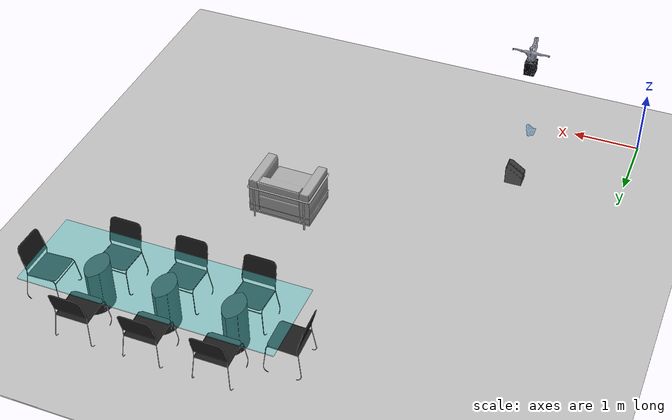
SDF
<sdf version="1.6">
 <world name="default">
  <model name="ground_plane">
   <static>1</static>
   <link name="link">
    <collision name="collision">
     <geometry><plane><normal>0 0 1</normal><size>100 100</size></plane></geometry>
     <surface><friction><ode><mu>1</mu><mu2>1</mu2></ode></friction></surface>
    </collision>
    <visual name="visual">
     <cast_shadows>0</cast_shadows>
     <geometry><plane><normal>0 0 1</normal><size>100 100</size></plane></geometry>
     <material>
      <script><uri>file://media/materials/scripts/gazebo.material</uri><name>Gazebo/Grey</name></script>
     </material>
    </visual>
    <velocity_decay><linear>0</linear><angular>0</angular></velocity_decay>
   </link>
  </model>
  <model name="chair_set_1_0">
   <link name="link_16">
    <pose>0.07217 0.114259 -0.032065 0 -0 1.57</pose>
    <visual name="visual">
     <geometry><mesh><uri>model://chair_set_1/meshes/chair_frame.dae</uri><scale>1 1 1</scale></mesh></geometry>
     <material>
      <lighting>1</lighting>
      <ambient>0.3 0.3 0.3 1</ambient>
      <diffuse>0.7 0.7 0.7 1</diffuse>
      <specular>0.01 0.01 0.01 1</specular>
      <emissive>0 0 0 1</emissive>
      <shader type="vertex"><normal_map>__default__</normal_map></shader>
     </material>
    </visual>
    <collision name="collision">
     <geometry><mesh><uri>model://chair_set_1/meshes/chair_frame.dae</uri><scale>1 1 1</scale></mesh></geometry>
    </collision>
   </link>
   <link name="link_17">
    <pose>0.069192 0.1237 -0.032065 0 -0 1.57</pose>
    <visual name="visual">
     <geometry><mesh><uri>model://chair_set_1/meshes/chair_cushions.dae</uri><scale>1 1 1</scale></mesh></geometry>
     <material>
      <script>
       <uri>model://chair_set_1/materials/scripts</uri>
       <uri>model://chair_set_1/materials/textures</uri>
       <name>chair_set_1</name>
      </script>
     </material>
    </visual>
    <collision name="collision">
     <geometry><mesh><uri>model://chair_set_1/meshes/chair_cushions.dae</uri><scale>1 1 1</scale></mesh></geometry>
    </collision>
   </link>
   <link name="link_18">
    <pose>0.606963 -0.367766 -0.032065 0 -0 0</pose>
    <visual name="visual">
     <geometry>
      <mesh><uri>model://chair_set_1/meshes/sofa_cushions_back.dae</uri><scale>1 1 1</scale></mesh>
     </geometry>
     <material>
      <script>
       <uri>model://chair_set_1/materials/scripts</uri>
       <uri>model://chair_set_1/materials/textures</uri>
       <name>chair_set_1</name>
      </script>
     </material>
    </visual>
    <collision name="collision">
     <geometry>
      <mesh><uri>model://chair_set_1/meshes/sofa_cushions_back.dae</uri><scale>1 1 1</scale></mesh>
     </geometry>
    </collision>
   </link>
   <static>1</static>
   <pose>4.46134 3.28393 0 0 0 -0.011</pose>
  </model>
  <model name="chair_3">
   <link name="link_4">
    <pose>-0.282457 -0.259387 0 0 -0 0</pose>
    <visual name="visual">
     <geometry><mesh><uri>model://chair_3/meshes/model.dae</uri><scale>1 1 1</scale></mesh></geometry>
     <material>
      <lighting>1</lighting>
      <ambient>0 0 0 1</ambient>
      <diffuse>0.1 0.1 0.1 1</diffuse>
      <specular>0.01 0.01 0.01 1</specular>
      <emissive>0 0 0 1</emissive>
     </material>
    </visual>
    <collision name="collision">
     <geometry><mesh><uri>model://chair_3/meshes/model.dae</uri><scale>1 1 1</scale></mesh></geometry>
    </collision>
   </link>
   <static>1</static>
   <pose>4 6.5 0 0 -0 0</pose>
  </model>
  <model name="chair_3_clone">
   <link name="link_4">
    <pose>-0.282457 -0.259387 0 0 -0 0</pose>
    <visual name="visual">
     <geometry><mesh><uri>model://chair_3/meshes/model.dae</uri><scale>1 1 1</scale></mesh></geometry>
     <material>
      <lighting>1</lighting>
      <ambient>0 0 0 1</ambient>
      <diffuse>0.1 0.1 0.1 1</diffuse>
      <specular>0.01 0.01 0.01 1</specular>
      <emissive>0 0 0 1</emissive>
     </material>
    </visual>
    <collision name="collision">
     <geometry><mesh><uri>model://chair_3/meshes/model.dae</uri><scale>1 1 1</scale></mesh></geometry>
    </collision>
   </link>
   <static>1</static>
   <pose>5 6.5 0 0 -0 0</pose>
  </model>
  <model name="chair_3_clone_0">
   <link name="link_4">
    <pose>-0.282457 -0.259387 0 0 -0 0</pose>
    <visual name="visual">
     <geometry><mesh><uri>model://chair_3/meshes/model.dae</uri><scale>1 1 1</scale></mesh></geometry>
     <material>
      <lighting>1</lighting>
      <ambient>0 0 0 1</ambient>
      <diffuse>0.1 0.1 0.1 1</diffuse>
      <specular>0.01 0.01 0.01 1</specular>
      <emissive>0 0 0 1</emissive>
     </material>
    </visual>
    <collision name="collision">
     <geometry><mesh><uri>model://chair_3/meshes/model.dae</uri><scale>1 1 1</scale></mesh></geometry>
    </collision>
   </link>
   <static>1</static>
   <pose>6 6.5 0 0 -0 0</pose>
  </model>
  <model name="chair_3_clone_1">
   <link name="link_4">
    <pose>-0.282457 -0.259387 0 0 -0 0</pose>
    <visual name="visual">
     <geometry><mesh><uri>model://chair_3/meshes/model.dae</uri><scale>1 1 1</scale></mesh></geometry>
     <material>
      <lighting>1</lighting>
      <ambient>0 0 0 1</ambient>
      <diffuse>0.1 0.1 0.1 1</diffuse>
      <specular>0.01 0.01 0.01 1</specular>
      <emissive>0 0 0 1</emissive>
     </material>
    </visual>
    <collision name="collision">
     <geometry><mesh><uri>model://chair_3/meshes/model.dae</uri><scale>1 1 1</scale></mesh></geometry>
    </collision>
   </link>
   <static>1</static>
   <pose>6 5.5 0 0 -0 3.13584</pose>
  </model>
  <model name="chair_3_clone_1_clone">
   <link name="link_4">
    <pose>-0.282457 -0.259387 0 0 -0 0</pose>
    <visual name="visual">
     <geometry><mesh><uri>model://chair_3/meshes/model.dae</uri><scale>1 1 1</scale></mesh></geometry>
     <material>
      <lighting>1</lighting>
      <ambient>0 0 0 1</ambient>
      <diffuse>0.1 0.1 0.1 1</diffuse>
      <specular>0.01 0.01 0.01 1</specular>
      <emissive>0 0 0 1</emissive>
     </material>
    </visual>
    <collision name="collision">
     <geometry><mesh><uri>model://chair_3/meshes/model.dae</uri><scale>1 1 1</scale></mesh></geometry>
    </collision>
   </link>
   <static>1</static>
   <pose>5 5.5 0 0 -0 3.13584</pose>
  </model>
  <model name="chair_3_clone_1_clone_0">
   <link name="link_4">
    <pose>-0.282457 -0.259387 0 0 -0 0</pose>
    <visual name="visual">
     <geometry><mesh><uri>model://chair_3/meshes/model.dae</uri><scale>1 1 1</scale></mesh></geometry>
     <material>
      <lighting>1</lighting>
      <ambient>0 0 0 1</ambient>
      <diffuse>0.1 0.1 0.1 1</diffuse>
      <specular>0.01 0.01 0.01 1</specular>
      <emissive>0 0 0 1</emissive>
     </material>
    </visual>
    <collision name="collision">
     <geometry><mesh><uri>model://chair_3/meshes/model.dae</uri><scale>1 1 1</scale></mesh></geometry>
    </collision>
   </link>
   <static>1</static>
   <pose>4 5.5 0 0 -0 3.13584</pose>
  </model>
  <model name="chair_3_clone_1_clone_0_clone">
   <link name="link_4">
    <pose>-0.282457 -0.259387 0 0 -0 0</pose>
    <visual name="visual">
     <geometry><mesh><uri>model://chair_3/meshes/model.dae</uri><scale>1 1 1</scale></mesh></geometry>
     <material>
      <lighting>1</lighting>
      <ambient>0 0 0 1</ambient>
      <diffuse>0.1 0.1 0.1 1</diffuse>
      <specular>0.01 0.01 0.01 1</specular>
      <emissive>0 0 0 1</emissive>
     </material>
    </visual>
    <collision name="collision">
     <geometry><mesh><uri>model://chair_3/meshes/model.dae</uri><scale>1 1 1</scale></mesh></geometry>
    </collision>
   </link>
   <static>1</static>
   <pose>3.25 6 0 0 -0 1.59445</pose>
  </model>
  <model name="chair_3_clone_1_clone_0_clone_0">
   <link name="link_4">
    <pose>-0.282457 -0.259387 0 0 -0 0</pose>
    <visual name="visual">
     <geometry><mesh><uri>model://chair_3/meshes/model.dae</uri><scale>1 1 1</scale></mesh></geometry>
     <material>
      <lighting>1</lighting>
      <ambient>0 0 0 1</ambient>
      <diffuse>0.1 0.1 0.1 1</diffuse>
      <specular>0.01 0.01 0.01 1</specular>
      <emissive>0 0 0 1</emissive>
     </material>
    </visual>
    <collision name="collision">
     <geometry><mesh><uri>model://chair_3/meshes/model.dae</uri><scale>1 1 1</scale></mesh></geometry>
    </collision>
   </link>
   <static>1</static>
   <pose>6.75 6 0 0 0 -1.58533</pose>
  </model>
  <model name="table_conference_3">
   <link name="link_6">
    <visual name="visual">
     <geometry><mesh><uri>model://table_conference_3/meshes/leg.dae</uri><scale>1 1 1</scale></mesh></geometry>
     <material>
      <script>
       <uri>model://table_conference_3/materials/scripts</uri>
       <uri>model://table_conference_3/materials/textures</uri>
       <name>table_conf_3</name>
      </script>
     </material>
    </visual>
    <collision name="collision">
     <geometry><mesh><uri>model://table_conference_3/meshes/leg.dae</uri><scale>1 1 1</scale></mesh></geometry>
    </collision>
   </link>
   <link name="link_7">
    <visual name="visual">
     <geometry><mesh><uri>model://table_conference_3/meshes/top.dae</uri><scale>1 1 1</scale></mesh></geometry>
     <material>
      <lighting>1</lighting>
      <ambient>0.278 0.776 0.776 1</ambient>
      <diffuse>0.278 0.776 0.776 1</diffuse>
      <specular>0.01 0.01 0.01 1</specular>
      <emissive>0 0 0 1</emissive>
      <shader type="vertex"><normal_map>__default__</normal_map></shader>
     </material>
     <transparency>0.6</transparency>
    </visual>
    <collision name="collision">
     <geometry><mesh><uri>model://table_conference_3/meshes/top.dae</uri><scale>1 1 1</scale></mesh></geometry>
    </collision>
   </link>
   <link name="link_8">
    <pose>0 1 0 0 -0 0</pose>
    <visual name="visual">
     <geometry><mesh><uri>model://table_conference_3/meshes/leg.dae</uri><scale>1 1 1</scale></mesh></geometry>
     <material>
      <script>
       <uri>model://table_conference_3/materials/scripts</uri>
       <uri>model://table_conference_3/materials/textures</uri>
       <name>table_conf_3</name>
      </script>
     </material>
    </visual>
    <collision name="collision">
     <geometry><mesh><uri>model://table_conference_3/meshes/leg.dae</uri><scale>1 1 1</scale></mesh></geometry>
    </collision>
   </link>
   <link name="link_9">
    <pose>0 -1 0 0 -0 0</pose>
    <visual name="visual">
     <geometry><mesh><uri>model://table_conference_3/meshes/leg.dae</uri><scale>1 1 1</scale></mesh></geometry>
     <material>
      <script>
       <uri>model://table_conference_3/materials/scripts</uri>
       <uri>model://table_conference_3/materials/textures</uri>
       <name>table_conf_3</name>
      </script>
     </material>
    </visual>
    <collision name="collision">
     <geometry><mesh><uri>model://table_conference_3/meshes/leg.dae</uri><scale>1 1 1</scale></mesh></geometry>
    </collision>
   </link>
   <static>1</static>
   <pose>5 6 -0.002256 0 0 -1.57202</pose>
  </model>
  <model name="figurine_2">
   <link name="link_2">
    <visual name="visual">
     <geometry><mesh><uri>model://figurine_2/meshes/model.dae</uri><scale>1 1 1</scale></mesh></geometry>
     <material>
      <script>
       <uri>model://figurine_2/materials/scripts</uri>
       <uri>model://figurine_2/materials/textures</uri>
       <name>figure</name>
      </script>
     </material>
    </visual>
    <collision name="collision">
     <geometry><mesh><uri>model://figurine_2/meshes/model.dae</uri><scale>1 1 1</scale></mesh></geometry>
    </collision>
   </link>
   <static>1</static>
   <pose>1.55497 1.25712 1.85596 0 -0 0</pose>
  </model>
  <model name="vase_glass">
   <link name="link_32">
    <pose>-0.22993 0.023263 0 0 -0 0</pose>
    <visual name="visual">
     <geometry><mesh><uri>model://vase_glass/meshes/vase4.dae</uri><scale>1 1 1</scale></mesh></geometry>
     <material>
      <lighting>1</lighting>
      <ambient>0.16 0.607 0.984 1</ambient>
      <diffuse>0.16 0.607 0.984 1</diffuse>
      <specular>0.01 0.01 0.01 1</specular>
      <emissive>0 0 0 1</emissive>
      <shader type="vertex"><normal_map>__default__</normal_map></shader>
     </material>
     <transparency>0.6</transparency>
    </visual>
    <collision name="collision">
     <geometry><mesh><uri>model://vase_glass/meshes/vase4.dae</uri><scale>1 1 1</scale></mesh></geometry>
    </collision>
   </link>
   <static>1</static>
   <pose>1.52854 0.941377 0.536672 0 -0 0</pose>
  </model>
  <model name="file_box_4_clone">
   <link name="link_6">
    <visual name="visual">
     <pose>0 0 -0.003306 0 -0 0</pose>
     <geometry><mesh><uri>model://file_box_4/meshes/body.dae</uri><scale>1 1 1</scale></mesh></geometry>
     <material>
      <script>
       <uri>model://file_box_4/materials/scripts</uri>
       <uri>model://file_box_4/materials/textures</uri>
       <name>file_box</name>
      </script>
     </material>
    </visual>
    <collision name="collision">
     <geometry><mesh><uri>model://file_box_4/meshes/body.dae</uri><scale>1 1 1</scale></mesh></geometry>
    </collision>
   </link>
   <link name="link_7">
    <visual name="visual">
     <pose>0 0 -0.003306 0 -0 0</pose>
     <geometry><mesh><uri>model://file_box_4/meshes/ring.dae</uri><scale>1 1 1</scale></mesh></geometry>
     <material>
      <lighting>1</lighting>
      <script><uri>file://media/materials/scripts/gazebo.material</uri><name>Gazebo/Grey</name></script>
      <ambient>0.3 0.3 0.3 1</ambient>
      <diffuse>0.7 0.7 0.7 1</diffuse>
      <specular>0.01 0.01 0.01 1</specular>
      <emissive>0 0 0 1</emissive>
     </material>
    </visual>
    <collision name="collision">
     <geometry><mesh><uri>model://file_box_4/meshes/ring.dae</uri><scale>1 1 1</scale></mesh></geometry>
    </collision>
   </link>
   <link name="link_8">
    <visual name="visual">
     <pose>0 0 -0.003306 0 -0 0</pose>
     <geometry><mesh><uri>model://file_box_4/meshes/tag.dae</uri><scale>1 1 1</scale></mesh></geometry>
     <material>
      <lighting>1</lighting>
      <ambient>1 1 1 1</ambient>
      <diffuse>1 1 1 1</diffuse>
      <specular>0.01 0.01 0.01 1</specular>
      <emissive>0 0 0 1</emissive>
     </material>
    </visual>
    <collision name="collision">
     <geometry><mesh><uri>model://file_box_4/meshes/tag.dae</uri><scale>1 1 1</scale></mesh></geometry>
    </collision>
   </link>
   <static>1</static>
   <pose>1.55535 1.59461 0.091207 0 -0 1.57828</pose>
  </model>
  <model name="file_box_4_clone_0">
   <link name="link_6">
    <visual name="visual">
     <pose>0 0 -0.003306 0 -0 0</pose>
     <geometry><mesh><uri>model://file_box_4/meshes/body.dae</uri><scale>1 1 1</scale></mesh></geometry>
     <material>
      <script>
       <uri>model://file_box_4/materials/scripts</uri>
       <uri>model://file_box_4/materials/textures</uri>
       <name>file_box</name>
      </script>
     </material>
    </visual>
    <collision name="collision">
     <geometry><mesh><uri>model://file_box_4/meshes/body.dae</uri><scale>1 1 1</scale></mesh></geometry>
    </collision>
   </link>
   <link name="link_7">
    <visual name="visual">
     <pose>0 0 -0.003306 0 -0 0</pose>
     <geometry><mesh><uri>model://file_box_4/meshes/ring.dae</uri><scale>1 1 1</scale></mesh></geometry>
     <material>
      <lighting>1</lighting>
      <script><uri>file://media/materials/scripts/gazebo.material</uri><name>Gazebo/Grey</name></script>
      <ambient>0.3 0.3 0.3 1</ambient>
      <diffuse>0.7 0.7 0.7 1</diffuse>
      <specular>0.01 0.01 0.01 1</specular>
      <emissive>0 0 0 1</emissive>
     </material>
    </visual>
    <collision name="collision">
     <geometry><mesh><uri>model://file_box_4/meshes/ring.dae</uri><scale>1 1 1</scale></mesh></geometry>
    </collision>
   </link>
   <link name="link_8">
    <visual name="visual">
     <pose>0 0 -0.003306 0 -0 0</pose>
     <geometry><mesh><uri>model://file_box_4/meshes/tag.dae</uri><scale>1 1 1</scale></mesh></geometry>
     <material>
      <lighting>1</lighting>
      <ambient>1 1 1 1</ambient>
      <diffuse>1 1 1 1</diffuse>
      <specular>0.01 0.01 0.01 1</specular>
      <emissive>0 0 0 1</emissive>
     </material>
    </visual>
    <collision name="collision">
     <geometry><mesh><uri>model://file_box_4/meshes/tag.dae</uri><scale>1 1 1</scale></mesh></geometry>
    </collision>
   </link>
   <static>1</static>
   <pose>1.55821 1.47559 0.091207 0 -0 1.57828</pose>
  </model>
  <model name="Floor_room_0">
   <link name="main">
    <pose>0 0 0.01 0 -0 0</pose>
    <collision name="main_Collision"><geometry><box><size>20 20 0.001</size></box></geometry></collision>
    <visual name="main_Visual">
     <geometry><box><size>20 20 0.001</size></box></geometry>
     <material>
      <script>
       <uri>model://Floor_room/materials/scripts</uri>
       <uri>model://Floor_room/materials/textures</uri>
       <name>floor_room</name>
      </script>
     </material>
    </visual>
   </link>
   <static>1</static>
  </model>
 </world>
</sdf>
